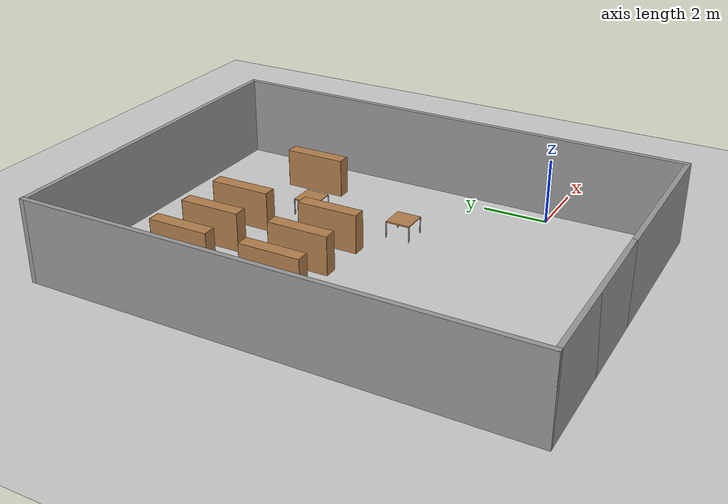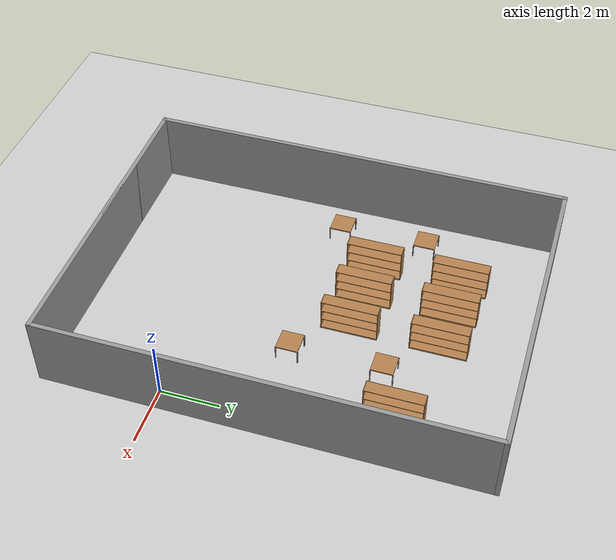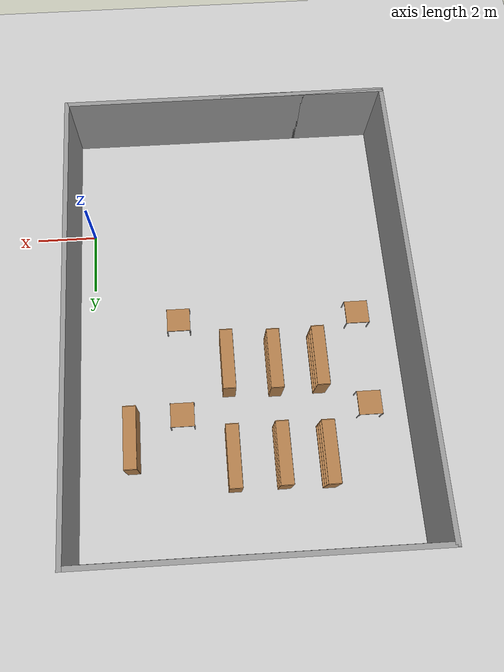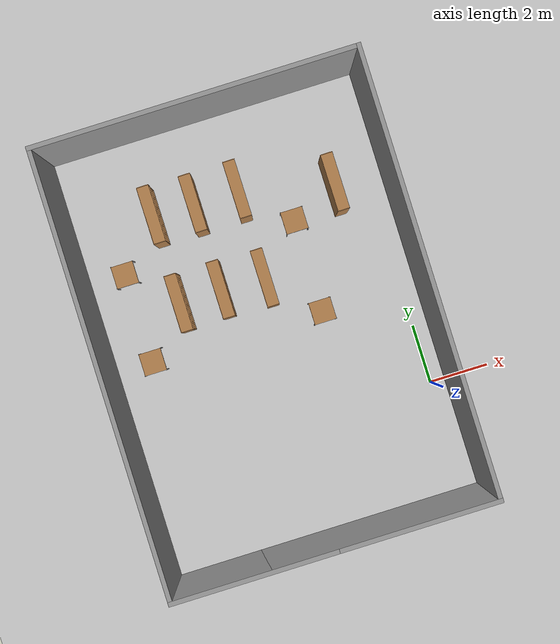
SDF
<sdf version="1.6">
 <world name="default">
  <model name="ground_plane">
   <static>1</static>
   <link name="link">
    <collision name="collision">
     <geometry><plane><normal>0 0 1</normal><size>100 100</size></plane></geometry>
     <surface><friction><ode><mu>100</mu><mu2>50</mu2></ode></friction></surface>
    </collision>
    <visual name="visual">
     <cast_shadows>0</cast_shadows>
     <geometry><plane><normal>0 0 1</normal><size>100 100</size></plane></geometry>
     <material>
      <script><uri>file://media/materials/scripts/gazebo.material</uri><name>Gazebo/Grey</name></script>
     </material>
    </visual>
   </link>
  </model>
  <model name="table_clone">
   <static>1</static>
   <link name="link">
    <collision name="surface">
     <pose>0 0 0.5 0 -0 0</pose>
     <geometry><box><size>0.75 0.75 0.04</size></box></geometry>
    </collision>
    <visual name="visual1">
     <pose>0 0 0.5 0 -0 0</pose>
     <geometry><box><size>0.75 0.75 0.04</size></box></geometry>
     <material>
      <script><uri>file://media/materials/scripts/gazebo.material</uri><name>Gazebo/Wood</name></script>
     </material>
    </visual>
    <collision name="front_left_leg">
     <pose>0.37 0.37 0.25 0 -0 0</pose>
     <geometry><cylinder><radius>0.02</radius><length>0.5</length></cylinder></geometry>
    </collision>
    <visual name="front_left_leg">
     <pose>0.37 0.37 0.25 0 -0 0</pose>
     <geometry><cylinder><radius>0.02</radius><length>0.5</length></cylinder></geometry>
     <material>
      <script><uri>file://media/materials/scripts/gazebo.material</uri><name>Gazebo/Grey</name></script>
     </material>
    </visual>
    <collision name="front_right_leg">
     <pose>0.37 -0.37 0.25 0 -0 0</pose>
     <geometry><cylinder><radius>0.02</radius><length>0.5</length></cylinder></geometry>
    </collision>
    <visual name="front_right_leg">
     <pose>0.37 -0.37 0.25 0 -0 0</pose>
     <geometry><cylinder><radius>0.02</radius><length>0.5</length></cylinder></geometry>
     <material>
      <script><uri>file://media/materials/scripts/gazebo.material</uri><name>Gazebo/Grey</name></script>
     </material>
    </visual>
    <collision name="back_right_leg">
     <pose>-0.37 -0.37 0.25 0 -0 0</pose>
     <geometry><cylinder><radius>0.02</radius><length>0.5</length></cylinder></geometry>
    </collision>
    <visual name="back_right_leg">
     <pose>-0.37 -0.37 0.25 0 -0 0</pose>
     <geometry><cylinder><radius>0.02</radius><length>0.5</length></cylinder></geometry>
     <material>
      <script><uri>file://media/materials/scripts/gazebo.material</uri><name>Gazebo/Grey</name></script>
     </material>
    </visual>
    <collision name="back_left_leg">
     <pose>-0.37 0.37 0.25 0 -0 0</pose>
     <geometry><cylinder><radius>0.02</radius><length>0.5</length></cylinder></geometry>
    </collision>
    <visual name="back_left_leg">
     <pose>-0.37 0.37 0.25 0 -0 0</pose>
     <geometry><cylinder><radius>0.02</radius><length>0.5</length></cylinder></geometry>
     <material>
      <script><uri>file://media/materials/scripts/gazebo.material</uri><name>Gazebo/Grey</name></script>
     </material>
    </visual>
    <velocity_decay><linear>0</linear><angular>0</angular></velocity_decay>
   </link>
   <pose>-2.79575 3.38865 0 0 -0 0</pose>
  </model>
  <model name="table_clone_0">
   <static>1</static>
   <link name="link">
    <collision name="surface">
     <pose>0 0 0.5 0 -0 0</pose>
     <geometry><box><size>0.75 0.75 0.04</size></box></geometry>
    </collision>
    <visual name="visual1">
     <pose>0 0 0.5 0 -0 0</pose>
     <geometry><box><size>0.75 0.75 0.04</size></box></geometry>
     <material>
      <script><uri>file://media/materials/scripts/gazebo.material</uri><name>Gazebo/Wood</name></script>
     </material>
    </visual>
    <collision name="front_left_leg">
     <pose>0.37 0.37 0.25 0 -0 0</pose>
     <geometry><cylinder><radius>0.02</radius><length>0.5</length></cylinder></geometry>
    </collision>
    <visual name="front_left_leg">
     <pose>0.37 0.37 0.25 0 -0 0</pose>
     <geometry><cylinder><radius>0.02</radius><length>0.5</length></cylinder></geometry>
     <material>
      <script><uri>file://media/materials/scripts/gazebo.material</uri><name>Gazebo/Grey</name></script>
     </material>
    </visual>
    <collision name="front_right_leg">
     <pose>0.37 -0.37 0.25 0 -0 0</pose>
     <geometry><cylinder><radius>0.02</radius><length>0.5</length></cylinder></geometry>
    </collision>
    <visual name="front_right_leg">
     <pose>0.37 -0.37 0.25 0 -0 0</pose>
     <geometry><cylinder><radius>0.02</radius><length>0.5</length></cylinder></geometry>
     <material>
      <script><uri>file://media/materials/scripts/gazebo.material</uri><name>Gazebo/Grey</name></script>
     </material>
    </visual>
    <collision name="back_right_leg">
     <pose>-0.37 -0.37 0.25 0 -0 0</pose>
     <geometry><cylinder><radius>0.02</radius><length>0.5</length></cylinder></geometry>
    </collision>
    <visual name="back_right_leg">
     <pose>-0.37 -0.37 0.25 0 -0 0</pose>
     <geometry><cylinder><radius>0.02</radius><length>0.5</length></cylinder></geometry>
     <material>
      <script><uri>file://media/materials/scripts/gazebo.material</uri><name>Gazebo/Grey</name></script>
     </material>
    </visual>
    <collision name="back_left_leg">
     <pose>-0.37 0.37 0.25 0 -0 0</pose>
     <geometry><cylinder><radius>0.02</radius><length>0.5</length></cylinder></geometry>
    </collision>
    <visual name="back_left_leg">
     <pose>-0.37 0.37 0.25 0 -0 0</pose>
     <geometry><cylinder><radius>0.02</radius><length>0.5</length></cylinder></geometry>
     <material>
      <script><uri>file://media/materials/scripts/gazebo.material</uri><name>Gazebo/Grey</name></script>
     </material>
    </visual>
    <velocity_decay><linear>0</linear><angular>0</angular></velocity_decay>
   </link>
   <pose>-2.79311 6.53017 0 0 -0 0</pose>
  </model>
  <model name="table_clone_2">
   <static>1</static>
   <link name="link">
    <collision name="surface">
     <pose>0 0 0.5 0 -0 0</pose>
     <geometry><box><size>0.75 0.75 0.04</size></box></geometry>
    </collision>
    <visual name="visual1">
     <pose>0 0 0.5 0 -0 0</pose>
     <geometry><box><size>0.75 0.75 0.04</size></box></geometry>
     <material>
      <script><uri>file://media/materials/scripts/gazebo.material</uri><name>Gazebo/Wood</name></script>
     </material>
    </visual>
    <collision name="front_left_leg">
     <pose>0.37 0.37 0.25 0 -0 0</pose>
     <geometry><cylinder><radius>0.02</radius><length>0.5</length></cylinder></geometry>
    </collision>
    <visual name="front_left_leg">
     <pose>0.37 0.37 0.25 0 -0 0</pose>
     <geometry><cylinder><radius>0.02</radius><length>0.5</length></cylinder></geometry>
     <material>
      <script><uri>file://media/materials/scripts/gazebo.material</uri><name>Gazebo/Grey</name></script>
     </material>
    </visual>
    <collision name="front_right_leg">
     <pose>0.37 -0.37 0.25 0 -0 0</pose>
     <geometry><cylinder><radius>0.02</radius><length>0.5</length></cylinder></geometry>
    </collision>
    <visual name="front_right_leg">
     <pose>0.37 -0.37 0.25 0 -0 0</pose>
     <geometry><cylinder><radius>0.02</radius><length>0.5</length></cylinder></geometry>
     <material>
      <script><uri>file://media/materials/scripts/gazebo.material</uri><name>Gazebo/Grey</name></script>
     </material>
    </visual>
    <collision name="back_right_leg">
     <pose>-0.37 -0.37 0.25 0 -0 0</pose>
     <geometry><cylinder><radius>0.02</radius><length>0.5</length></cylinder></geometry>
    </collision>
    <visual name="back_right_leg">
     <pose>-0.37 -0.37 0.25 0 -0 0</pose>
     <geometry><cylinder><radius>0.02</radius><length>0.5</length></cylinder></geometry>
     <material>
      <script><uri>file://media/materials/scripts/gazebo.material</uri><name>Gazebo/Grey</name></script>
     </material>
    </visual>
    <collision name="back_left_leg">
     <pose>-0.37 0.37 0.25 0 -0 0</pose>
     <geometry><cylinder><radius>0.02</radius><length>0.5</length></cylinder></geometry>
    </collision>
    <visual name="back_left_leg">
     <pose>-0.37 0.37 0.25 0 -0 0</pose>
     <geometry><cylinder><radius>0.02</radius><length>0.5</length></cylinder></geometry>
     <material>
      <script><uri>file://media/materials/scripts/gazebo.material</uri><name>Gazebo/Grey</name></script>
     </material>
    </visual>
    <velocity_decay><linear>0</linear><angular>0</angular></velocity_decay>
   </link>
   <pose>-8.67679 3.44581 0 0 -0 0</pose>
  </model>
  <model name="table_clone_3">
   <static>1</static>
   <link name="link">
    <collision name="surface">
     <pose>0 0 0.5 0 -0 0</pose>
     <geometry><box><size>0.75 0.75 0.04</size></box></geometry>
    </collision>
    <visual name="visual1">
     <pose>0 0 0.5 0 -0 0</pose>
     <geometry><box><size>0.75 0.75 0.04</size></box></geometry>
     <material>
      <script><uri>file://media/materials/scripts/gazebo.material</uri><name>Gazebo/Wood</name></script>
     </material>
    </visual>
    <collision name="front_left_leg">
     <pose>0.37 0.37 0.25 0 -0 0</pose>
     <geometry><cylinder><radius>0.02</radius><length>0.5</length></cylinder></geometry>
    </collision>
    <visual name="front_left_leg">
     <pose>0.37 0.37 0.25 0 -0 0</pose>
     <geometry><cylinder><radius>0.02</radius><length>0.5</length></cylinder></geometry>
     <material>
      <script><uri>file://media/materials/scripts/gazebo.material</uri><name>Gazebo/Grey</name></script>
     </material>
    </visual>
    <collision name="front_right_leg">
     <pose>0.37 -0.37 0.25 0 -0 0</pose>
     <geometry><cylinder><radius>0.02</radius><length>0.5</length></cylinder></geometry>
    </collision>
    <visual name="front_right_leg">
     <pose>0.37 -0.37 0.25 0 -0 0</pose>
     <geometry><cylinder><radius>0.02</radius><length>0.5</length></cylinder></geometry>
     <material>
      <script><uri>file://media/materials/scripts/gazebo.material</uri><name>Gazebo/Grey</name></script>
     </material>
    </visual>
    <collision name="back_right_leg">
     <pose>-0.37 -0.37 0.25 0 -0 0</pose>
     <geometry><cylinder><radius>0.02</radius><length>0.5</length></cylinder></geometry>
    </collision>
    <visual name="back_right_leg">
     <pose>-0.37 -0.37 0.25 0 -0 0</pose>
     <geometry><cylinder><radius>0.02</radius><length>0.5</length></cylinder></geometry>
     <material>
      <script><uri>file://media/materials/scripts/gazebo.material</uri><name>Gazebo/Grey</name></script>
     </material>
    </visual>
    <collision name="back_left_leg">
     <pose>-0.37 0.37 0.25 0 -0 0</pose>
     <geometry><cylinder><radius>0.02</radius><length>0.5</length></cylinder></geometry>
    </collision>
    <visual name="back_left_leg">
     <pose>-0.37 0.37 0.25 0 -0 0</pose>
     <geometry><cylinder><radius>0.02</radius><length>0.5</length></cylinder></geometry>
     <material>
      <script><uri>file://media/materials/scripts/gazebo.material</uri><name>Gazebo/Grey</name></script>
     </material>
    </visual>
    <velocity_decay><linear>0</linear><angular>0</angular></velocity_decay>
   </link>
   <pose>-8.69998 6.47888 0 0 -0 0</pose>
  </model>
  <model name="Untitled">
   <pose>-4.74 3.52 0 0 -0 0</pose>
   <link name="Wall_0">
    <collision name="Wall_0_Collision">
     <geometry><box><size>5.5 0.15 2.5</size></box></geometry>
     <pose>0 0 1.25 0 -0 0</pose>
    </collision>
    <visual name="Wall_0_Visual">
     <pose>0 0 1.25 0 -0 0</pose>
     <geometry><box><size>5.5 0.15 2.5</size></box></geometry>
     <material>
      <script><uri>file://media/materials/scripts/gazebo.material</uri><name>Gazebo/Grey</name></script>
      <ambient>1 1 1 1</ambient>
     </material>
     <meta><layer>0</layer></meta>
    </visual>
    <pose>-2.625 -7.3 0 0 -0 3.14159</pose>
   </link>
   <link name="Wall_1">
    <collision name="Wall_1_Collision">
     <geometry><box><size>10.75 0.15 2.5</size></box></geometry>
     <pose>0 0 1.25 0 -0 0</pose>
    </collision>
    <visual name="Wall_1_Visual">
     <pose>0 0 1.25 0 -0 0</pose>
     <geometry><box><size>10.75 0.15 2.5</size></box></geometry>
     <material>
      <script><uri>file://media/materials/scripts/gazebo.material</uri><name>Gazebo/Grey</name></script>
      <ambient>1 1 1 1</ambient>
     </material>
     <meta><layer>0</layer></meta>
    </visual>
    <pose>0 -7.3 0 0 -0 0</pose>
   </link>
   <link name="Wall_2">
    <collision name="Wall_2_Collision">
     <geometry><box><size>14.75 0.15 2.5</size></box></geometry>
     <pose>0 0 1.25 0 -0 0</pose>
    </collision>
    <visual name="Wall_2_Visual">
     <pose>0 0 1.25 0 -0 0</pose>
     <geometry><box><size>14.75 0.15 2.5</size></box></geometry>
     <material>
      <script><uri>file://media/materials/scripts/gazebo.material</uri><name>Gazebo/Grey</name></script>
      <ambient>1 1 1 1</ambient>
     </material>
     <meta><layer>0</layer></meta>
    </visual>
    <pose>5.3 0 0 0 -0 1.5708</pose>
   </link>
   <link name="Wall_3">
    <collision name="Wall_3_Collision">
     <geometry><box><size>10.75 0.15 2.5</size></box></geometry>
     <pose>0 0 1.25 0 -0 0</pose>
    </collision>
    <visual name="Wall_3_Visual">
     <pose>0 0 1.25 0 -0 0</pose>
     <geometry><box><size>10.75 0.15 2.5</size></box></geometry>
     <material>
      <script><uri>file://media/materials/scripts/gazebo.material</uri><name>Gazebo/Grey</name></script>
      <ambient>1 1 1 1</ambient>
     </material>
     <meta><layer>0</layer></meta>
    </visual>
    <pose>0 7.3 0 0 -0 3.14159</pose>
   </link>
   <link name="Wall_4">
    <collision name="Wall_4_Collision">
     <geometry><box><size>14.75 0.15 2.5</size></box></geometry>
     <pose>0 0 1.25 0 -0 0</pose>
    </collision>
    <visual name="Wall_4_Visual">
     <pose>0 0 1.25 0 -0 0</pose>
     <geometry><box><size>14.75 0.15 2.5</size></box></geometry>
     <material>
      <script><uri>file://media/materials/scripts/gazebo.material</uri><name>Gazebo/Grey</name></script>
      <ambient>1 1 1 1</ambient>
     </material>
     <meta><layer>0</layer></meta>
    </visual>
    <pose>-5.3 0 0 0 -0 -1.5708</pose>
   </link>
   <static>1</static>
  </model>
  <model name="library_bookshelf_onesided_0">
   <static>1</static>
   <link name="link">
    <inertial><mass>1</mass></inertial>
    <collision name="back">
     <pose>0 0.005 0.6 0 -0 0</pose>
     <geometry><box><size>1.9 0.01 1.2</size></box></geometry>
    </collision>
    <visual name="back">
     <pose>0 0.005 0.6 0 -0 0</pose>
     <geometry><box><size>1.9 0.01 1.2</size></box></geometry>
     <material>
      <script><uri>file://media/materials/scripts/gazebo.material</uri><name>Gazebo/Wood</name></script>
     </material>
    </visual>
    <collision name="left_side">
     <pose>0.95 -0.195 0.6 0 -0 0</pose>
     <geometry><box><size>0.02 0.4 1.2</size></box></geometry>
    </collision>
    <visual name="left_side">
     <pose>0.95 -0.195 0.6 0 -0 0</pose>
     <geometry><box><size>0.02 0.4 1.2</size></box></geometry>
     <material>
      <script><uri>file://media/materials/scripts/gazebo.material</uri><name>Gazebo/Wood</name></script>
     </material>
    </visual>
    <collision name="right_side">
     <pose>-0.95 -0.195 0.6 0 -0 0</pose>
     <geometry><box><size>0.02 0.4 1.2</size></box></geometry>
    </collision>
    <visual name="right_side">
     <pose>-0.95 -0.195 0.6 0 -0 0</pose>
     <geometry><box><size>0.02 0.4 1.2</size></box></geometry>
     <material>
      <script><uri>file://media/materials/scripts/gazebo.material</uri><name>Gazebo/Wood</name></script>
     </material>
    </visual>
    <collision name="bottom">
     <pose>0 -0.195 0.03 0 -0 0</pose>
     <geometry><box><size>1.88 0.4 0.06</size></box></geometry>
    </collision>
    <visual name="bottom">
     <pose>0 -0.195 0.03 0 -0 0</pose>
     <geometry><box><size>1.88 0.4 0.06</size></box></geometry>
     <material>
      <script><uri>file://media/materials/scripts/gazebo.material</uri><name>Gazebo/Wood</name></script>
     </material>
    </visual>
    <collision name="top">
     <pose>0 -0.195 1.19 0 -0 0</pose>
     <geometry><box><size>1.88 0.4 0.02</size></box></geometry>
    </collision>
    <visual name="top">
     <pose>0 -0.195 1.19 0 -0 0</pose>
     <geometry><box><size>1.88 0.4 0.02</size></box></geometry>
     <material>
      <script><uri>file://media/materials/scripts/gazebo.material</uri><name>Gazebo/Wood</name></script>
     </material>
    </visual>
    <collision name="low_shelf">
     <pose>0 -0.195 0.43 0 -0 0</pose>
     <geometry><box><size>1.88 0.4 0.02</size></box></geometry>
    </collision>
    <visual name="low_shelf">
     <pose>0 -0.195 0.43 0 -0 0</pose>
     <geometry><box><size>1.88 0.4 0.02</size></box></geometry>
     <material>
      <script><uri>file://media/materials/scripts/gazebo.material</uri><name>Gazebo/Wood</name></script>
     </material>
    </visual>
    <collision name="high_shelf">
     <pose>0 -0.195 0.8 0 -0 0</pose>
     <geometry><box><size>1.88 0.4 0.02</size></box></geometry>
    </collision>
    <visual name="high_shelf">
     <pose>0 -0.195 0.8 0 -0 0</pose>
     <geometry><box><size>1.88 0.4 0.02</size></box></geometry>
     <material>
      <script><uri>file://media/materials/scripts/gazebo.material</uri><name>Gazebo/Wood</name></script>
     </material>
    </visual>
   </link>
   <pose>-4.49483 4.97096 0 0 0.002317 1.57295</pose>
  </model>
  <model name="library_bookshelf_onesided_0_clone_0">
   <static>1</static>
   <link name="link">
    <inertial><mass>1</mass></inertial>
    <collision name="back">
     <pose>0 0.005 0.6 0 -0 0</pose>
     <geometry><box><size>1.9 0.01 1.2</size></box></geometry>
    </collision>
    <visual name="back">
     <pose>0 0.005 0.6 0 -0 0</pose>
     <geometry><box><size>1.9 0.01 1.2</size></box></geometry>
     <material>
      <script><uri>file://media/materials/scripts/gazebo.material</uri><name>Gazebo/Wood</name></script>
     </material>
    </visual>
    <collision name="left_side">
     <pose>0.95 -0.195 0.6 0 -0 0</pose>
     <geometry><box><size>0.02 0.4 1.2</size></box></geometry>
    </collision>
    <visual name="left_side">
     <pose>0.95 -0.195 0.6 0 -0 0</pose>
     <geometry><box><size>0.02 0.4 1.2</size></box></geometry>
     <material>
      <script><uri>file://media/materials/scripts/gazebo.material</uri><name>Gazebo/Wood</name></script>
     </material>
    </visual>
    <collision name="right_side">
     <pose>-0.95 -0.195 0.6 0 -0 0</pose>
     <geometry><box><size>0.02 0.4 1.2</size></box></geometry>
    </collision>
    <visual name="right_side">
     <pose>-0.95 -0.195 0.6 0 -0 0</pose>
     <geometry><box><size>0.02 0.4 1.2</size></box></geometry>
     <material>
      <script><uri>file://media/materials/scripts/gazebo.material</uri><name>Gazebo/Wood</name></script>
     </material>
    </visual>
    <collision name="bottom">
     <pose>0 -0.195 0.03 0 -0 0</pose>
     <geometry><box><size>1.88 0.4 0.06</size></box></geometry>
    </collision>
    <visual name="bottom">
     <pose>0 -0.195 0.03 0 -0 0</pose>
     <geometry><box><size>1.88 0.4 0.06</size></box></geometry>
     <material>
      <script><uri>file://media/materials/scripts/gazebo.material</uri><name>Gazebo/Wood</name></script>
     </material>
    </visual>
    <collision name="top">
     <pose>0 -0.195 1.19 0 -0 0</pose>
     <geometry><box><size>1.88 0.4 0.02</size></box></geometry>
    </collision>
    <visual name="top">
     <pose>0 -0.195 1.19 0 -0 0</pose>
     <geometry><box><size>1.88 0.4 0.02</size></box></geometry>
     <material>
      <script><uri>file://media/materials/scripts/gazebo.material</uri><name>Gazebo/Wood</name></script>
     </material>
    </visual>
    <collision name="low_shelf">
     <pose>0 -0.195 0.43 0 -0 0</pose>
     <geometry><box><size>1.88 0.4 0.02</size></box></geometry>
    </collision>
    <visual name="low_shelf">
     <pose>0 -0.195 0.43 0 -0 0</pose>
     <geometry><box><size>1.88 0.4 0.02</size></box></geometry>
     <material>
      <script><uri>file://media/materials/scripts/gazebo.material</uri><name>Gazebo/Wood</name></script>
     </material>
    </visual>
    <collision name="high_shelf">
     <pose>0 -0.195 0.8 0 -0 0</pose>
     <geometry><box><size>1.88 0.4 0.02</size></box></geometry>
    </collision>
    <visual name="high_shelf">
     <pose>0 -0.195 0.8 0 -0 0</pose>
     <geometry><box><size>1.88 0.4 0.02</size></box></geometry>
     <material>
      <script><uri>file://media/materials/scripts/gazebo.material</uri><name>Gazebo/Wood</name></script>
     </material>
    </visual>
   </link>
   <pose>-4.49264 7.96878 0 0 0.002317 1.57295</pose>
  </model>
  <model name="library_bookshelf_onesided_0_clone_1">
   <static>1</static>
   <link name="link">
    <inertial><mass>1</mass></inertial>
    <collision name="back">
     <pose>0 0.005 0.6 0 -0 0</pose>
     <geometry><box><size>1.9 0.01 1.2</size></box></geometry>
    </collision>
    <visual name="back">
     <pose>0 0.005 0.6 0 -0 0</pose>
     <geometry><box><size>1.9 0.01 1.2</size></box></geometry>
     <material>
      <script><uri>file://media/materials/scripts/gazebo.material</uri><name>Gazebo/Wood</name></script>
     </material>
    </visual>
    <collision name="left_side">
     <pose>0.95 -0.195 0.6 0 -0 0</pose>
     <geometry><box><size>0.02 0.4 1.2</size></box></geometry>
    </collision>
    <visual name="left_side">
     <pose>0.95 -0.195 0.6 0 -0 0</pose>
     <geometry><box><size>0.02 0.4 1.2</size></box></geometry>
     <material>
      <script><uri>file://media/materials/scripts/gazebo.material</uri><name>Gazebo/Wood</name></script>
     </material>
    </visual>
    <collision name="right_side">
     <pose>-0.95 -0.195 0.6 0 -0 0</pose>
     <geometry><box><size>0.02 0.4 1.2</size></box></geometry>
    </collision>
    <visual name="right_side">
     <pose>-0.95 -0.195 0.6 0 -0 0</pose>
     <geometry><box><size>0.02 0.4 1.2</size></box></geometry>
     <material>
      <script><uri>file://media/materials/scripts/gazebo.material</uri><name>Gazebo/Wood</name></script>
     </material>
    </visual>
    <collision name="bottom">
     <pose>0 -0.195 0.03 0 -0 0</pose>
     <geometry><box><size>1.88 0.4 0.06</size></box></geometry>
    </collision>
    <visual name="bottom">
     <pose>0 -0.195 0.03 0 -0 0</pose>
     <geometry><box><size>1.88 0.4 0.06</size></box></geometry>
     <material>
      <script><uri>file://media/materials/scripts/gazebo.material</uri><name>Gazebo/Wood</name></script>
     </material>
    </visual>
    <collision name="top">
     <pose>0 -0.195 1.19 0 -0 0</pose>
     <geometry><box><size>1.88 0.4 0.02</size></box></geometry>
    </collision>
    <visual name="top">
     <pose>0 -0.195 1.19 0 -0 0</pose>
     <geometry><box><size>1.88 0.4 0.02</size></box></geometry>
     <material>
      <script><uri>file://media/materials/scripts/gazebo.material</uri><name>Gazebo/Wood</name></script>
     </material>
    </visual>
    <collision name="low_shelf">
     <pose>0 -0.195 0.43 0 -0 0</pose>
     <geometry><box><size>1.88 0.4 0.02</size></box></geometry>
    </collision>
    <visual name="low_shelf">
     <pose>0 -0.195 0.43 0 -0 0</pose>
     <geometry><box><size>1.88 0.4 0.02</size></box></geometry>
     <material>
      <script><uri>file://media/materials/scripts/gazebo.material</uri><name>Gazebo/Wood</name></script>
     </material>
    </visual>
    <collision name="high_shelf">
     <pose>0 -0.195 0.8 0 -0 0</pose>
     <geometry><box><size>1.88 0.4 0.02</size></box></geometry>
    </collision>
    <visual name="high_shelf">
     <pose>0 -0.195 0.8 0 -0 0</pose>
     <geometry><box><size>1.88 0.4 0.02</size></box></geometry>
     <material>
      <script><uri>file://media/materials/scripts/gazebo.material</uri><name>Gazebo/Wood</name></script>
     </material>
    </visual>
   </link>
   <pose>-6.00199 7.96031 0 0 0.002317 1.57295</pose>
  </model>
  <model name="library_bookshelf_onesided_0_clone_2">
   <static>1</static>
   <link name="link">
    <inertial><mass>1</mass></inertial>
    <collision name="back">
     <pose>0 0.005 0.6 0 -0 0</pose>
     <geometry><box><size>1.9 0.01 1.2</size></box></geometry>
    </collision>
    <visual name="back">
     <pose>0 0.005 0.6 0 -0 0</pose>
     <geometry><box><size>1.9 0.01 1.2</size></box></geometry>
     <material>
      <script><uri>file://media/materials/scripts/gazebo.material</uri><name>Gazebo/Wood</name></script>
     </material>
    </visual>
    <collision name="left_side">
     <pose>0.95 -0.195 0.6 0 -0 0</pose>
     <geometry><box><size>0.02 0.4 1.2</size></box></geometry>
    </collision>
    <visual name="left_side">
     <pose>0.95 -0.195 0.6 0 -0 0</pose>
     <geometry><box><size>0.02 0.4 1.2</size></box></geometry>
     <material>
      <script><uri>file://media/materials/scripts/gazebo.material</uri><name>Gazebo/Wood</name></script>
     </material>
    </visual>
    <collision name="right_side">
     <pose>-0.95 -0.195 0.6 0 -0 0</pose>
     <geometry><box><size>0.02 0.4 1.2</size></box></geometry>
    </collision>
    <visual name="right_side">
     <pose>-0.95 -0.195 0.6 0 -0 0</pose>
     <geometry><box><size>0.02 0.4 1.2</size></box></geometry>
     <material>
      <script><uri>file://media/materials/scripts/gazebo.material</uri><name>Gazebo/Wood</name></script>
     </material>
    </visual>
    <collision name="bottom">
     <pose>0 -0.195 0.03 0 -0 0</pose>
     <geometry><box><size>1.88 0.4 0.06</size></box></geometry>
    </collision>
    <visual name="bottom">
     <pose>0 -0.195 0.03 0 -0 0</pose>
     <geometry><box><size>1.88 0.4 0.06</size></box></geometry>
     <material>
      <script><uri>file://media/materials/scripts/gazebo.material</uri><name>Gazebo/Wood</name></script>
     </material>
    </visual>
    <collision name="top">
     <pose>0 -0.195 1.19 0 -0 0</pose>
     <geometry><box><size>1.88 0.4 0.02</size></box></geometry>
    </collision>
    <visual name="top">
     <pose>0 -0.195 1.19 0 -0 0</pose>
     <geometry><box><size>1.88 0.4 0.02</size></box></geometry>
     <material>
      <script><uri>file://media/materials/scripts/gazebo.material</uri><name>Gazebo/Wood</name></script>
     </material>
    </visual>
    <collision name="low_shelf">
     <pose>0 -0.195 0.43 0 -0 0</pose>
     <geometry><box><size>1.88 0.4 0.02</size></box></geometry>
    </collision>
    <visual name="low_shelf">
     <pose>0 -0.195 0.43 0 -0 0</pose>
     <geometry><box><size>1.88 0.4 0.02</size></box></geometry>
     <material>
      <script><uri>file://media/materials/scripts/gazebo.material</uri><name>Gazebo/Wood</name></script>
     </material>
    </visual>
    <collision name="high_shelf">
     <pose>0 -0.195 0.8 0 -0 0</pose>
     <geometry><box><size>1.88 0.4 0.02</size></box></geometry>
    </collision>
    <visual name="high_shelf">
     <pose>0 -0.195 0.8 0 -0 0</pose>
     <geometry><box><size>1.88 0.4 0.02</size></box></geometry>
     <material>
      <script><uri>file://media/materials/scripts/gazebo.material</uri><name>Gazebo/Wood</name></script>
     </material>
    </visual>
   </link>
   <pose>-5.97352 5.03693 0 0 0.002317 1.57295</pose>
  </model>
  <model name="library_bookshelf_onesided_0_clone_4">
   <static>1</static>
   <link name="link">
    <inertial><mass>1</mass></inertial>
    <collision name="back">
     <pose>0 0.005 0.6 0 -0 0</pose>
     <geometry><box><size>1.9 0.01 1.2</size></box></geometry>
    </collision>
    <visual name="back">
     <pose>0 0.005 0.6 0 -0 0</pose>
     <geometry><box><size>1.9 0.01 1.2</size></box></geometry>
     <material>
      <script><uri>file://media/materials/scripts/gazebo.material</uri><name>Gazebo/Wood</name></script>
     </material>
    </visual>
    <collision name="left_side">
     <pose>0.95 -0.195 0.6 0 -0 0</pose>
     <geometry><box><size>0.02 0.4 1.2</size></box></geometry>
    </collision>
    <visual name="left_side">
     <pose>0.95 -0.195 0.6 0 -0 0</pose>
     <geometry><box><size>0.02 0.4 1.2</size></box></geometry>
     <material>
      <script><uri>file://media/materials/scripts/gazebo.material</uri><name>Gazebo/Wood</name></script>
     </material>
    </visual>
    <collision name="right_side">
     <pose>-0.95 -0.195 0.6 0 -0 0</pose>
     <geometry><box><size>0.02 0.4 1.2</size></box></geometry>
    </collision>
    <visual name="right_side">
     <pose>-0.95 -0.195 0.6 0 -0 0</pose>
     <geometry><box><size>0.02 0.4 1.2</size></box></geometry>
     <material>
      <script><uri>file://media/materials/scripts/gazebo.material</uri><name>Gazebo/Wood</name></script>
     </material>
    </visual>
    <collision name="bottom">
     <pose>0 -0.195 0.03 0 -0 0</pose>
     <geometry><box><size>1.88 0.4 0.06</size></box></geometry>
    </collision>
    <visual name="bottom">
     <pose>0 -0.195 0.03 0 -0 0</pose>
     <geometry><box><size>1.88 0.4 0.06</size></box></geometry>
     <material>
      <script><uri>file://media/materials/scripts/gazebo.material</uri><name>Gazebo/Wood</name></script>
     </material>
    </visual>
    <collision name="top">
     <pose>0 -0.195 1.19 0 -0 0</pose>
     <geometry><box><size>1.88 0.4 0.02</size></box></geometry>
    </collision>
    <visual name="top">
     <pose>0 -0.195 1.19 0 -0 0</pose>
     <geometry><box><size>1.88 0.4 0.02</size></box></geometry>
     <material>
      <script><uri>file://media/materials/scripts/gazebo.material</uri><name>Gazebo/Wood</name></script>
     </material>
    </visual>
    <collision name="low_shelf">
     <pose>0 -0.195 0.43 0 -0 0</pose>
     <geometry><box><size>1.88 0.4 0.02</size></box></geometry>
    </collision>
    <visual name="low_shelf">
     <pose>0 -0.195 0.43 0 -0 0</pose>
     <geometry><box><size>1.88 0.4 0.02</size></box></geometry>
     <material>
      <script><uri>file://media/materials/scripts/gazebo.material</uri><name>Gazebo/Wood</name></script>
     </material>
    </visual>
    <collision name="high_shelf">
     <pose>0 -0.195 0.8 0 -0 0</pose>
     <geometry><box><size>1.88 0.4 0.02</size></box></geometry>
    </collision>
    <visual name="high_shelf">
     <pose>0 -0.195 0.8 0 -0 0</pose>
     <geometry><box><size>1.88 0.4 0.02</size></box></geometry>
     <material>
      <script><uri>file://media/materials/scripts/gazebo.material</uri><name>Gazebo/Wood</name></script>
     </material>
    </visual>
   </link>
   <pose>-7.40025 5.01795 0 0 0.002317 1.57295</pose>
  </model>
  <model name="library_bookshelf_onesided_0_clone_6">
   <static>1</static>
   <link name="link">
    <inertial><mass>1</mass></inertial>
    <collision name="back">
     <pose>0 0.005 0.6 0 -0 0</pose>
     <geometry><box><size>1.9 0.01 1.2</size></box></geometry>
    </collision>
    <visual name="back">
     <pose>0 0.005 0.6 0 -0 0</pose>
     <geometry><box><size>1.9 0.01 1.2</size></box></geometry>
     <material>
      <script><uri>file://media/materials/scripts/gazebo.material</uri><name>Gazebo/Wood</name></script>
     </material>
    </visual>
    <collision name="left_side">
     <pose>0.95 -0.195 0.6 0 -0 0</pose>
     <geometry><box><size>0.02 0.4 1.2</size></box></geometry>
    </collision>
    <visual name="left_side">
     <pose>0.95 -0.195 0.6 0 -0 0</pose>
     <geometry><box><size>0.02 0.4 1.2</size></box></geometry>
     <material>
      <script><uri>file://media/materials/scripts/gazebo.material</uri><name>Gazebo/Wood</name></script>
     </material>
    </visual>
    <collision name="right_side">
     <pose>-0.95 -0.195 0.6 0 -0 0</pose>
     <geometry><box><size>0.02 0.4 1.2</size></box></geometry>
    </collision>
    <visual name="right_side">
     <pose>-0.95 -0.195 0.6 0 -0 0</pose>
     <geometry><box><size>0.02 0.4 1.2</size></box></geometry>
     <material>
      <script><uri>file://media/materials/scripts/gazebo.material</uri><name>Gazebo/Wood</name></script>
     </material>
    </visual>
    <collision name="bottom">
     <pose>0 -0.195 0.03 0 -0 0</pose>
     <geometry><box><size>1.88 0.4 0.06</size></box></geometry>
    </collision>
    <visual name="bottom">
     <pose>0 -0.195 0.03 0 -0 0</pose>
     <geometry><box><size>1.88 0.4 0.06</size></box></geometry>
     <material>
      <script><uri>file://media/materials/scripts/gazebo.material</uri><name>Gazebo/Wood</name></script>
     </material>
    </visual>
    <collision name="top">
     <pose>0 -0.195 1.19 0 -0 0</pose>
     <geometry><box><size>1.88 0.4 0.02</size></box></geometry>
    </collision>
    <visual name="top">
     <pose>0 -0.195 1.19 0 -0 0</pose>
     <geometry><box><size>1.88 0.4 0.02</size></box></geometry>
     <material>
      <script><uri>file://media/materials/scripts/gazebo.material</uri><name>Gazebo/Wood</name></script>
     </material>
    </visual>
    <collision name="low_shelf">
     <pose>0 -0.195 0.43 0 -0 0</pose>
     <geometry><box><size>1.88 0.4 0.02</size></box></geometry>
    </collision>
    <visual name="low_shelf">
     <pose>0 -0.195 0.43 0 -0 0</pose>
     <geometry><box><size>1.88 0.4 0.02</size></box></geometry>
     <material>
      <script><uri>file://media/materials/scripts/gazebo.material</uri><name>Gazebo/Wood</name></script>
     </material>
    </visual>
    <collision name="high_shelf">
     <pose>0 -0.195 0.8 0 -0 0</pose>
     <geometry><box><size>1.88 0.4 0.02</size></box></geometry>
    </collision>
    <visual name="high_shelf">
     <pose>0 -0.195 0.8 0 -0 0</pose>
     <geometry><box><size>1.88 0.4 0.02</size></box></geometry>
     <material>
      <script><uri>file://media/materials/scripts/gazebo.material</uri><name>Gazebo/Wood</name></script>
     </material>
    </visual>
   </link>
   <pose>-7.39555 8.00531 0 0 0.002317 1.57295</pose>
  </model>
  <model name="library_bookshelf_onesided_0_clone_9">
   <static>1</static>
   <link name="link">
    <inertial><mass>1</mass></inertial>
    <collision name="back">
     <pose>0 0.005 0.6 0 -0 0</pose>
     <geometry><box><size>1.9 0.01 1.2</size></box></geometry>
    </collision>
    <visual name="back">
     <pose>0 0.005 0.6 0 -0 0</pose>
     <geometry><box><size>1.9 0.01 1.2</size></box></geometry>
     <material>
      <script><uri>file://media/materials/scripts/gazebo.material</uri><name>Gazebo/Wood</name></script>
     </material>
    </visual>
    <collision name="left_side">
     <pose>0.95 -0.195 0.6 0 -0 0</pose>
     <geometry><box><size>0.02 0.4 1.2</size></box></geometry>
    </collision>
    <visual name="left_side">
     <pose>0.95 -0.195 0.6 0 -0 0</pose>
     <geometry><box><size>0.02 0.4 1.2</size></box></geometry>
     <material>
      <script><uri>file://media/materials/scripts/gazebo.material</uri><name>Gazebo/Wood</name></script>
     </material>
    </visual>
    <collision name="right_side">
     <pose>-0.95 -0.195 0.6 0 -0 0</pose>
     <geometry><box><size>0.02 0.4 1.2</size></box></geometry>
    </collision>
    <visual name="right_side">
     <pose>-0.95 -0.195 0.6 0 -0 0</pose>
     <geometry><box><size>0.02 0.4 1.2</size></box></geometry>
     <material>
      <script><uri>file://media/materials/scripts/gazebo.material</uri><name>Gazebo/Wood</name></script>
     </material>
    </visual>
    <collision name="bottom">
     <pose>0 -0.195 0.03 0 -0 0</pose>
     <geometry><box><size>1.88 0.4 0.06</size></box></geometry>
    </collision>
    <visual name="bottom">
     <pose>0 -0.195 0.03 0 -0 0</pose>
     <geometry><box><size>1.88 0.4 0.06</size></box></geometry>
     <material>
      <script><uri>file://media/materials/scripts/gazebo.material</uri><name>Gazebo/Wood</name></script>
     </material>
    </visual>
    <collision name="top">
     <pose>0 -0.195 1.19 0 -0 0</pose>
     <geometry><box><size>1.88 0.4 0.02</size></box></geometry>
    </collision>
    <visual name="top">
     <pose>0 -0.195 1.19 0 -0 0</pose>
     <geometry><box><size>1.88 0.4 0.02</size></box></geometry>
     <material>
      <script><uri>file://media/materials/scripts/gazebo.material</uri><name>Gazebo/Wood</name></script>
     </material>
    </visual>
    <collision name="low_shelf">
     <pose>0 -0.195 0.43 0 -0 0</pose>
     <geometry><box><size>1.88 0.4 0.02</size></box></geometry>
    </collision>
    <visual name="low_shelf">
     <pose>0 -0.195 0.43 0 -0 0</pose>
     <geometry><box><size>1.88 0.4 0.02</size></box></geometry>
     <material>
      <script><uri>file://media/materials/scripts/gazebo.material</uri><name>Gazebo/Wood</name></script>
     </material>
    </visual>
    <collision name="high_shelf">
     <pose>0 -0.195 0.8 0 -0 0</pose>
     <geometry><box><size>1.88 0.4 0.02</size></box></geometry>
    </collision>
    <visual name="high_shelf">
     <pose>0 -0.195 0.8 0 -0 0</pose>
     <geometry><box><size>1.88 0.4 0.02</size></box></geometry>
     <material>
      <script><uri>file://media/materials/scripts/gazebo.material</uri><name>Gazebo/Wood</name></script>
     </material>
    </visual>
   </link>
   <pose>-1.40256 7.25074 0 0 0.002317 1.57295</pose>
  </model>
 </world>
</sdf>
